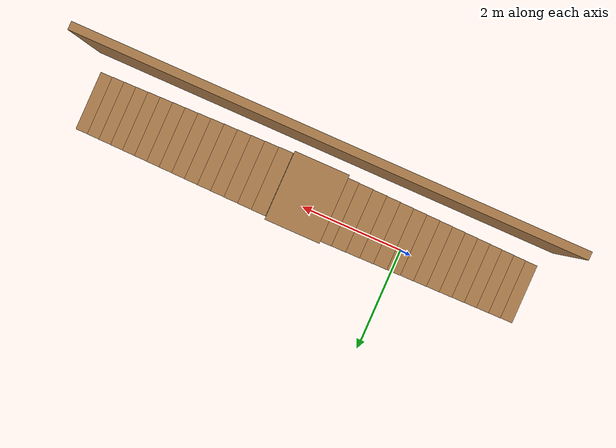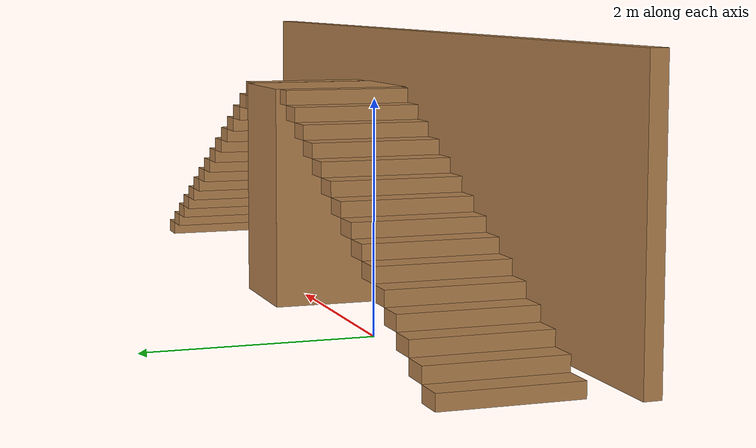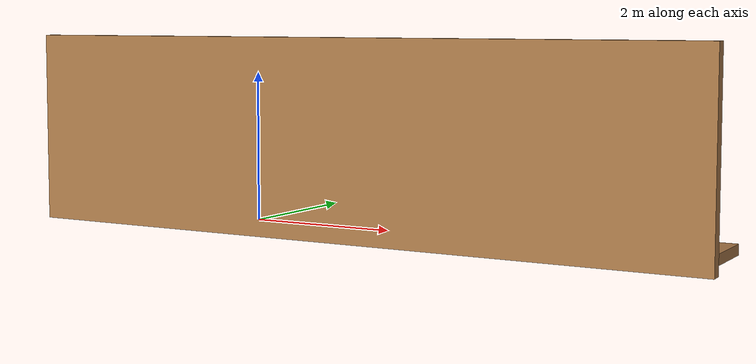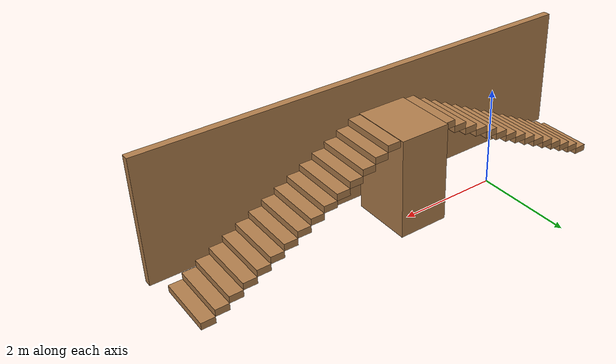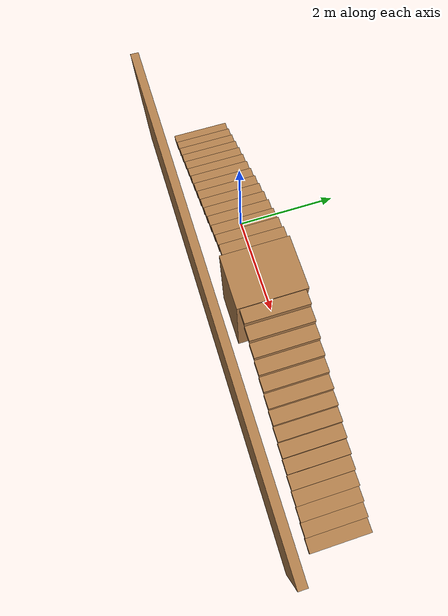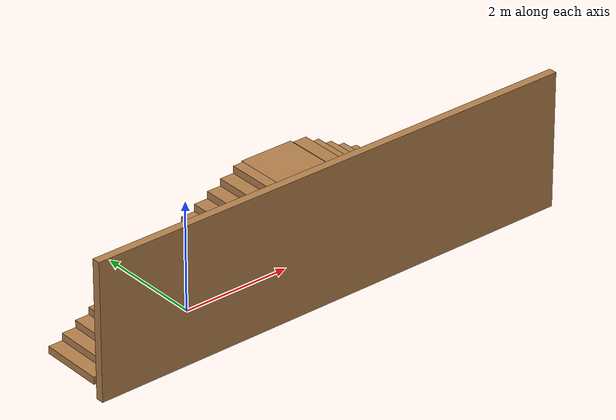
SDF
<?xml version='1.0'?>
<sdf version='1.7'>
  <model name='stair_mission'>
    <pose>1.99528 -0.410708 0 0 -0 0</pose>
    <link name='Stairs_5'>
      <visual name='Stairs_5_Visual_0'>
        <pose>-4.28691 0.2244 0.066667 0 -0 1.5708</pose>
        <geometry>
          <box>
            <size>1.157 0.263867 0.133333</size>
          </box>
        </geometry>
        <material>
          <script>
            <uri>file://media/materials/scripts/gazebo.material</uri>
            <name>Gazebo/Wood</name>
          </script>
          <ambient>1 1 1 1</ambient>
        </material>
        <meta>
          <layer>0</layer>
        </meta>
      </visual>
      <collision name='Stairs_5_Collision_0'>
        <geometry>
          <box>
            <size>1.157 0.263867 0.133333</size>
          </box>
        </geometry>
        <pose>-4.28691 0.2244 0.066667 0 -0 1.5708</pose>
      </collision>
      <visual name='Stairs_5_Visual_1'>
        <pose>-4.02305 0.2244 0.2 0 -0 1.5708</pose>
        <geometry>
          <box>
            <size>1.157 0.263867 0.133333</size>
          </box>
        </geometry>
        <material>
          <script>
            <uri>file://media/materials/scripts/gazebo.material</uri>
            <name>Gazebo/Wood</name>
          </script>
          <ambient>1 1 1 1</ambient>
        </material>
        <meta>
          <layer>0</layer>
        </meta>
      </visual>
      <collision name='Stairs_5_Collision_1'>
        <geometry>
          <box>
            <size>1.157 0.263867 0.133333</size>
          </box>
        </geometry>
        <pose>-4.02305 0.2244 0.2 0 -0 1.5708</pose>
      </collision>
      <visual name='Stairs_5_Visual_2'>
        <pose>-3.75918 0.2244 0.333333 0 -0 1.5708</pose>
        <geometry>
          <box>
            <size>1.157 0.263867 0.133333</size>
          </box>
        </geometry>
        <material>
          <script>
            <uri>file://media/materials/scripts/gazebo.material</uri>
            <name>Gazebo/Wood</name>
          </script>
          <ambient>1 1 1 1</ambient>
        </material>
        <meta>
          <layer>0</layer>
        </meta>
      </visual>
      <collision name='Stairs_5_Collision_2'>
        <geometry>
          <box>
            <size>1.157 0.263867 0.133333</size>
          </box>
        </geometry>
        <pose>-3.75918 0.2244 0.333333 0 -0 1.5708</pose>
      </collision>
      <visual name='Stairs_5_Visual_3'>
        <pose>-3.49532 0.2244 0.466667 0 -0 1.5708</pose>
        <geometry>
          <box>
            <size>1.157 0.263867 0.133333</size>
          </box>
        </geometry>
        <material>
          <script>
            <uri>file://media/materials/scripts/gazebo.material</uri>
            <name>Gazebo/Wood</name>
          </script>
          <ambient>1 1 1 1</ambient>
        </material>
        <meta>
          <layer>0</layer>
        </meta>
      </visual>
      <collision name='Stairs_5_Collision_3'>
        <geometry>
          <box>
            <size>1.157 0.263867 0.133333</size>
          </box>
        </geometry>
        <pose>-3.49532 0.2244 0.466667 0 -0 1.5708</pose>
      </collision>
      <visual name='Stairs_5_Visual_4'>
        <pose>-3.23145 0.2244 0.6 0 -0 1.5708</pose>
        <geometry>
          <box>
            <size>1.157 0.263867 0.133333</size>
          </box>
        </geometry>
        <material>
          <script>
            <uri>file://media/materials/scripts/gazebo.material</uri>
            <name>Gazebo/Wood</name>
          </script>
          <ambient>1 1 1 1</ambient>
        </material>
        <meta>
          <layer>0</layer>
        </meta>
      </visual>
      <collision name='Stairs_5_Collision_4'>
        <geometry>
          <box>
            <size>1.157 0.263867 0.133333</size>
          </box>
        </geometry>
        <pose>-3.23145 0.2244 0.6 0 -0 1.5708</pose>
      </collision>
      <visual name='Stairs_5_Visual_5'>
        <pose>-2.96758 0.2244 0.733333 0 -0 1.5708</pose>
        <geometry>
          <box>
            <size>1.157 0.263867 0.133333</size>
          </box>
        </geometry>
        <material>
          <script>
            <uri>file://media/materials/scripts/gazebo.material</uri>
            <name>Gazebo/Wood</name>
          </script>
          <ambient>1 1 1 1</ambient>
        </material>
        <meta>
          <layer>0</layer>
        </meta>
      </visual>
      <collision name='Stairs_5_Collision_5'>
        <geometry>
          <box>
            <size>1.157 0.263867 0.133333</size>
          </box>
        </geometry>
        <pose>-2.96758 0.2244 0.733333 0 -0 1.5708</pose>
      </collision>
      <visual name='Stairs_5_Visual_6'>
        <pose>-2.70371 0.2244 0.866667 0 -0 1.5708</pose>
        <geometry>
          <box>
            <size>1.157 0.263867 0.133333</size>
          </box>
        </geometry>
        <material>
          <script>
            <uri>file://media/materials/scripts/gazebo.material</uri>
            <name>Gazebo/Wood</name>
          </script>
          <ambient>1 1 1 1</ambient>
        </material>
        <meta>
          <layer>0</layer>
        </meta>
      </visual>
      <collision name='Stairs_5_Collision_6'>
        <geometry>
          <box>
            <size>1.157 0.263867 0.133333</size>
          </box>
        </geometry>
        <pose>-2.70371 0.2244 0.866667 0 -0 1.5708</pose>
      </collision>
      <visual name='Stairs_5_Visual_7'>
        <pose>-2.43985 0.2244 1 0 -0 1.5708</pose>
        <geometry>
          <box>
            <size>1.157 0.263867 0.133333</size>
          </box>
        </geometry>
        <material>
          <script>
            <uri>file://media/materials/scripts/gazebo.material</uri>
            <name>Gazebo/Wood</name>
          </script>
          <ambient>1 1 1 1</ambient>
        </material>
        <meta>
          <layer>0</layer>
        </meta>
      </visual>
      <collision name='Stairs_5_Collision_7'>
        <geometry>
          <box>
            <size>1.157 0.263867 0.133333</size>
          </box>
        </geometry>
        <pose>-2.43985 0.2244 1 0 -0 1.5708</pose>
      </collision>
      <visual name='Stairs_5_Visual_8'>
        <pose>-2.17598 0.2244 1.13333 0 -0 1.5708</pose>
        <geometry>
          <box>
            <size>1.157 0.263867 0.133333</size>
          </box>
        </geometry>
        <material>
          <script>
            <uri>file://media/materials/scripts/gazebo.material</uri>
            <name>Gazebo/Wood</name>
          </script>
          <ambient>1 1 1 1</ambient>
        </material>
        <meta>
          <layer>0</layer>
        </meta>
      </visual>
      <collision name='Stairs_5_Collision_8'>
        <geometry>
          <box>
            <size>1.157 0.263867 0.133333</size>
          </box>
        </geometry>
        <pose>-2.17598 0.2244 1.13333 0 -0 1.5708</pose>
      </collision>
      <visual name='Stairs_5_Visual_9'>
        <pose>-1.91212 0.2244 1.26667 0 -0 1.5708</pose>
        <geometry>
          <box>
            <size>1.157 0.263867 0.133333</size>
          </box>
        </geometry>
        <material>
          <script>
            <uri>file://media/materials/scripts/gazebo.material</uri>
            <name>Gazebo/Wood</name>
          </script>
          <ambient>1 1 1 1</ambient>
        </material>
        <meta>
          <layer>0</layer>
        </meta>
      </visual>
      <collision name='Stairs_5_Collision_9'>
        <geometry>
          <box>
            <size>1.157 0.263867 0.133333</size>
          </box>
        </geometry>
        <pose>-1.91212 0.2244 1.26667 0 -0 1.5708</pose>
      </collision>
      <visual name='Stairs_5_Visual_10'>
        <pose>-1.64825 0.2244 1.4 0 -0 1.5708</pose>
        <geometry>
          <box>
            <size>1.157 0.263867 0.133333</size>
          </box>
        </geometry>
        <material>
          <script>
            <uri>file://media/materials/scripts/gazebo.material</uri>
            <name>Gazebo/Wood</name>
          </script>
          <ambient>1 1 1 1</ambient>
        </material>
        <meta>
          <layer>0</layer>
        </meta>
      </visual>
      <collision name='Stairs_5_Collision_10'>
        <geometry>
          <box>
            <size>1.157 0.263867 0.133333</size>
          </box>
        </geometry>
        <pose>-1.64825 0.2244 1.4 0 -0 1.5708</pose>
      </collision>
      <visual name='Stairs_5_Visual_11'>
        <pose>-1.38438 0.224401 1.53333 0 -0 1.5708</pose>
        <geometry>
          <box>
            <size>1.157 0.263867 0.133333</size>
          </box>
        </geometry>
        <material>
          <script>
            <uri>file://media/materials/scripts/gazebo.material</uri>
            <name>Gazebo/Wood</name>
          </script>
          <ambient>1 1 1 1</ambient>
        </material>
        <meta>
          <layer>0</layer>
        </meta>
      </visual>
      <collision name='Stairs_5_Collision_11'>
        <geometry>
          <box>
            <size>1.157 0.263867 0.133333</size>
          </box>
        </geometry>
        <pose>-1.38438 0.224401 1.53333 0 -0 1.5708</pose>
      </collision>
      <visual name='Stairs_5_Visual_12'>
        <pose>-1.12051 0.224401 1.66667 0 -0 1.5708</pose>
        <geometry>
          <box>
            <size>1.157 0.263867 0.133333</size>
          </box>
        </geometry>
        <material>
          <script>
            <uri>file://media/materials/scripts/gazebo.material</uri>
            <name>Gazebo/Wood</name>
          </script>
          <ambient>1 1 1 1</ambient>
        </material>
        <meta>
          <layer>0</layer>
        </meta>
      </visual>
      <collision name='Stairs_5_Collision_12'>
        <geometry>
          <box>
            <size>1.157 0.263867 0.133333</size>
          </box>
        </geometry>
        <pose>-1.12051 0.224401 1.66667 0 -0 1.5708</pose>
      </collision>
      <visual name='Stairs_5_Visual_13'>
        <pose>-0.856648 0.224401 1.8 0 -0 1.5708</pose>
        <geometry>
          <box>
            <size>1.157 0.263867 0.133333</size>
          </box>
        </geometry>
        <material>
          <script>
            <uri>file://media/materials/scripts/gazebo.material</uri>
            <name>Gazebo/Wood</name>
          </script>
          <ambient>1 1 1 1</ambient>
        </material>
        <meta>
          <layer>0</layer>
        </meta>
      </visual>
      <collision name='Stairs_5_Collision_13'>
        <geometry>
          <box>
            <size>1.157 0.263867 0.133333</size>
          </box>
        </geometry>
        <pose>-0.856648 0.224401 1.8 0 -0 1.5708</pose>
      </collision>
      <visual name='Stairs_5_Visual_14'>
        <pose>-0.592781 0.224401 1.93333 0 -0 1.5708</pose>
        <geometry>
          <box>
            <size>1.157 0.263867 0.133333</size>
          </box>
        </geometry>
        <material>
          <script>
            <uri>file://media/materials/scripts/gazebo.material</uri>
            <name>Gazebo/Wood</name>
          </script>
          <ambient>1 1 1 1</ambient>
        </material>
        <meta>
          <layer>0</layer>
        </meta>
      </visual>
      <collision name='Stairs_5_Collision_14'>
        <geometry>
          <box>
            <size>1.157 0.263867 0.133333</size>
          </box>
        </geometry>
        <pose>-0.592781 0.224401 1.93333 0 -0 1.5708</pose>
      </collision>
    </link>
    <link name='Stairs_6'>
      <visual name='Stairs_6_Visual_0'>
        <pose>4.30211 0.212508 0.066667 0 -0 -1.5708</pose>
        <geometry>
          <box>
            <size>1.15 0.263333 0.133333</size>
          </box>
        </geometry>
        <material>
          <script>
            <uri>file://media/materials/scripts/gazebo.material</uri>
            <name>Gazebo/Wood</name>
          </script>
          <ambient>1 1 1 1</ambient>
        </material>
        <meta>
          <layer>0</layer>
        </meta>
      </visual>
      <collision name='Stairs_6_Collision_0'>
        <geometry>
          <box>
            <size>1.15 0.263333 0.133333</size>
          </box>
        </geometry>
        <pose>4.30211 0.212508 0.066667 0 -0 -1.5708</pose>
      </collision>
      <visual name='Stairs_6_Visual_1'>
        <pose>4.03877 0.212508 0.2 0 -0 -1.5708</pose>
        <geometry>
          <box>
            <size>1.15 0.263333 0.133333</size>
          </box>
        </geometry>
        <material>
          <script>
            <uri>file://media/materials/scripts/gazebo.material</uri>
            <name>Gazebo/Wood</name>
          </script>
          <ambient>1 1 1 1</ambient>
        </material>
        <meta>
          <layer>0</layer>
        </meta>
      </visual>
      <collision name='Stairs_6_Collision_1'>
        <geometry>
          <box>
            <size>1.15 0.263333 0.133333</size>
          </box>
        </geometry>
        <pose>4.03877 0.212508 0.2 0 -0 -1.5708</pose>
      </collision>
      <visual name='Stairs_6_Visual_2'>
        <pose>3.77544 0.212508 0.333333 0 -0 -1.5708</pose>
        <geometry>
          <box>
            <size>1.15 0.263333 0.133333</size>
          </box>
        </geometry>
        <material>
          <script>
            <uri>file://media/materials/scripts/gazebo.material</uri>
            <name>Gazebo/Wood</name>
          </script>
          <ambient>1 1 1 1</ambient>
        </material>
        <meta>
          <layer>0</layer>
        </meta>
      </visual>
      <collision name='Stairs_6_Collision_2'>
        <geometry>
          <box>
            <size>1.15 0.263333 0.133333</size>
          </box>
        </geometry>
        <pose>3.77544 0.212508 0.333333 0 -0 -1.5708</pose>
      </collision>
      <visual name='Stairs_6_Visual_3'>
        <pose>3.51211 0.212508 0.466667 0 -0 -1.5708</pose>
        <geometry>
          <box>
            <size>1.15 0.263333 0.133333</size>
          </box>
        </geometry>
        <material>
          <script>
            <uri>file://media/materials/scripts/gazebo.material</uri>
            <name>Gazebo/Wood</name>
          </script>
          <ambient>1 1 1 1</ambient>
        </material>
        <meta>
          <layer>0</layer>
        </meta>
      </visual>
      <collision name='Stairs_6_Collision_3'>
        <geometry>
          <box>
            <size>1.15 0.263333 0.133333</size>
          </box>
        </geometry>
        <pose>3.51211 0.212508 0.466667 0 -0 -1.5708</pose>
      </collision>
      <visual name='Stairs_6_Visual_4'>
        <pose>3.24877 0.212508 0.6 0 -0 -1.5708</pose>
        <geometry>
          <box>
            <size>1.15 0.263333 0.133333</size>
          </box>
        </geometry>
        <material>
          <script>
            <uri>file://media/materials/scripts/gazebo.material</uri>
            <name>Gazebo/Wood</name>
          </script>
          <ambient>1 1 1 1</ambient>
        </material>
        <meta>
          <layer>0</layer>
        </meta>
      </visual>
      <collision name='Stairs_6_Collision_4'>
        <geometry>
          <box>
            <size>1.15 0.263333 0.133333</size>
          </box>
        </geometry>
        <pose>3.24877 0.212508 0.6 0 -0 -1.5708</pose>
      </collision>
      <visual name='Stairs_6_Visual_5'>
        <pose>2.98544 0.212508 0.733333 0 -0 -1.5708</pose>
        <geometry>
          <box>
            <size>1.15 0.263333 0.133333</size>
          </box>
        </geometry>
        <material>
          <script>
            <uri>file://media/materials/scripts/gazebo.material</uri>
            <name>Gazebo/Wood</name>
          </script>
          <ambient>1 1 1 1</ambient>
        </material>
        <meta>
          <layer>0</layer>
        </meta>
      </visual>
      <collision name='Stairs_6_Collision_5'>
        <geometry>
          <box>
            <size>1.15 0.263333 0.133333</size>
          </box>
        </geometry>
        <pose>2.98544 0.212508 0.733333 0 -0 -1.5708</pose>
      </collision>
      <visual name='Stairs_6_Visual_6'>
        <pose>2.72211 0.212508 0.866667 0 -0 -1.5708</pose>
        <geometry>
          <box>
            <size>1.15 0.263333 0.133333</size>
          </box>
        </geometry>
        <material>
          <script>
            <uri>file://media/materials/scripts/gazebo.material</uri>
            <name>Gazebo/Wood</name>
          </script>
          <ambient>1 1 1 1</ambient>
        </material>
        <meta>
          <layer>0</layer>
        </meta>
      </visual>
      <collision name='Stairs_6_Collision_6'>
        <geometry>
          <box>
            <size>1.15 0.263333 0.133333</size>
          </box>
        </geometry>
        <pose>2.72211 0.212508 0.866667 0 -0 -1.5708</pose>
      </collision>
      <visual name='Stairs_6_Visual_7'>
        <pose>2.45877 0.212508 1 0 -0 -1.5708</pose>
        <geometry>
          <box>
            <size>1.15 0.263333 0.133333</size>
          </box>
        </geometry>
        <material>
          <script>
            <uri>file://media/materials/scripts/gazebo.material</uri>
            <name>Gazebo/Wood</name>
          </script>
          <ambient>1 1 1 1</ambient>
        </material>
        <meta>
          <layer>0</layer>
        </meta>
      </visual>
      <collision name='Stairs_6_Collision_7'>
        <geometry>
          <box>
            <size>1.15 0.263333 0.133333</size>
          </box>
        </geometry>
        <pose>2.45877 0.212508 1 0 -0 -1.5708</pose>
      </collision>
      <visual name='Stairs_6_Visual_8'>
        <pose>2.19544 0.212508 1.13333 0 -0 -1.5708</pose>
        <geometry>
          <box>
            <size>1.15 0.263333 0.133333</size>
          </box>
        </geometry>
        <material>
          <script>
            <uri>file://media/materials/scripts/gazebo.material</uri>
            <name>Gazebo/Wood</name>
          </script>
          <ambient>1 1 1 1</ambient>
        </material>
        <meta>
          <layer>0</layer>
        </meta>
      </visual>
      <collision name='Stairs_6_Collision_8'>
        <geometry>
          <box>
            <size>1.15 0.263333 0.133333</size>
          </box>
        </geometry>
        <pose>2.19544 0.212508 1.13333 0 -0 -1.5708</pose>
      </collision>
      <visual name='Stairs_6_Visual_9'>
        <pose>1.93211 0.212508 1.26667 0 -0 -1.5708</pose>
        <geometry>
          <box>
            <size>1.15 0.263333 0.133333</size>
          </box>
        </geometry>
        <material>
          <script>
            <uri>file://media/materials/scripts/gazebo.material</uri>
            <name>Gazebo/Wood</name>
          </script>
          <ambient>1 1 1 1</ambient>
        </material>
        <meta>
          <layer>0</layer>
        </meta>
      </visual>
      <collision name='Stairs_6_Collision_9'>
        <geometry>
          <box>
            <size>1.15 0.263333 0.133333</size>
          </box>
        </geometry>
        <pose>1.93211 0.212508 1.26667 0 -0 -1.5708</pose>
      </collision>
      <visual name='Stairs_6_Visual_10'>
        <pose>1.66877 0.212508 1.4 0 -0 -1.5708</pose>
        <geometry>
          <box>
            <size>1.15 0.263333 0.133333</size>
          </box>
        </geometry>
        <material>
          <script>
            <uri>file://media/materials/scripts/gazebo.material</uri>
            <name>Gazebo/Wood</name>
          </script>
          <ambient>1 1 1 1</ambient>
        </material>
        <meta>
          <layer>0</layer>
        </meta>
      </visual>
      <collision name='Stairs_6_Collision_10'>
        <geometry>
          <box>
            <size>1.15 0.263333 0.133333</size>
          </box>
        </geometry>
        <pose>1.66877 0.212508 1.4 0 -0 -1.5708</pose>
      </collision>
      <visual name='Stairs_6_Visual_11'>
        <pose>1.40544 0.212508 1.53333 0 -0 -1.5708</pose>
        <geometry>
          <box>
            <size>1.15 0.263333 0.133333</size>
          </box>
        </geometry>
        <material>
          <script>
            <uri>file://media/materials/scripts/gazebo.material</uri>
            <name>Gazebo/Wood</name>
          </script>
          <ambient>1 1 1 1</ambient>
        </material>
        <meta>
          <layer>0</layer>
        </meta>
      </visual>
      <collision name='Stairs_6_Collision_11'>
        <geometry>
          <box>
            <size>1.15 0.263333 0.133333</size>
          </box>
        </geometry>
        <pose>1.40544 0.212508 1.53333 0 -0 -1.5708</pose>
      </collision>
      <visual name='Stairs_6_Visual_12'>
        <pose>1.14211 0.212508 1.66667 0 -0 -1.5708</pose>
        <geometry>
          <box>
            <size>1.15 0.263333 0.133333</size>
          </box>
        </geometry>
        <material>
          <script>
            <uri>file://media/materials/scripts/gazebo.material</uri>
            <name>Gazebo/Wood</name>
          </script>
          <ambient>1 1 1 1</ambient>
        </material>
        <meta>
          <layer>0</layer>
        </meta>
      </visual>
      <collision name='Stairs_6_Collision_12'>
        <geometry>
          <box>
            <size>1.15 0.263333 0.133333</size>
          </box>
        </geometry>
        <pose>1.14211 0.212508 1.66667 0 -0 -1.5708</pose>
      </collision>
      <visual name='Stairs_6_Visual_13'>
        <pose>0.878774 0.212508 1.8 0 -0 -1.5708</pose>
        <geometry>
          <box>
            <size>1.15 0.263333 0.133333</size>
          </box>
        </geometry>
        <material>
          <script>
            <uri>file://media/materials/scripts/gazebo.material</uri>
            <name>Gazebo/Wood</name>
          </script>
          <ambient>1 1 1 1</ambient>
        </material>
        <meta>
          <layer>0</layer>
        </meta>
      </visual>
      <collision name='Stairs_6_Collision_13'>
        <geometry>
          <box>
            <size>1.15 0.263333 0.133333</size>
          </box>
        </geometry>
        <pose>0.878774 0.212508 1.8 0 -0 -1.5708</pose>
      </collision>
      <visual name='Stairs_6_Visual_14'>
        <pose>0.61544 0.212508 1.93333 0 -0 -1.5708</pose>
        <geometry>
          <box>
            <size>1.15 0.263333 0.133333</size>
          </box>
        </geometry>
        <material>
          <script>
            <uri>file://media/materials/scripts/gazebo.material</uri>
            <name>Gazebo/Wood</name>
          </script>
          <ambient>1 1 1 1</ambient>
        </material>
        <meta>
          <layer>0</layer>
        </meta>
      </visual>
      <collision name='Stairs_6_Collision_14'>
        <geometry>
          <box>
            <size>1.15 0.263333 0.133333</size>
          </box>
        </geometry>
        <pose>0.61544 0.212508 1.93333 0 -0 -1.5708</pose>
      </collision>
    </link>
    <link name='Wall_0'>
      <collision name='Wall_0_Collision'>
        <geometry>
          <box>
            <size>1.25 1 2</size>
          </box>
        </geometry>
        <pose>0 0 1 0 -0 0</pose>
      </collision>
      <visual name='Wall_0_Visual'>
        <pose>0 0 1 0 -0 0</pose>
        <geometry>
          <box>
            <size>1.25 1 2</size>
          </box>
        </geometry>
        <material>
          <script>
            <uri>file://media/materials/scripts/gazebo.material</uri>
            <name>Gazebo/Wood</name>
          </script>
          <ambient>1 1 1 1</ambient>
        </material>
        <meta>
          <layer>0</layer>
        </meta>
      </visual>
      <pose>-0.025775 0.218197 0 0 -0 -1.5708</pose>
    </link>
    <link name='Wall_3'>
      <collision name='Wall_3_Collision'>
        <geometry>
          <box>
            <size>9.25 0.15 2.5</size>
          </box>
        </geometry>
        <pose>0 0 1.25 0 -0 0</pose>
      </collision>
      <visual name='Wall_3_Visual'>
        <pose>0 0 1.25 0 -0 0</pose>
        <geometry>
          <box>
            <size>9.25 0.15 2.5</size>
          </box>
        </geometry>
        <material>
          <script>
            <uri>file://media/materials/scripts/gazebo.material</uri>
            <name>Gazebo/Wood</name>
          </script>
          <ambient>1 1 1 1</ambient>
        </material>
        <meta>
          <layer>0</layer>
        </meta>
      </visual>
      <pose>-0 -0.768197 0 0 -0 0</pose>
    </link>
    <static>1</static>
  </model>
</sdf>
